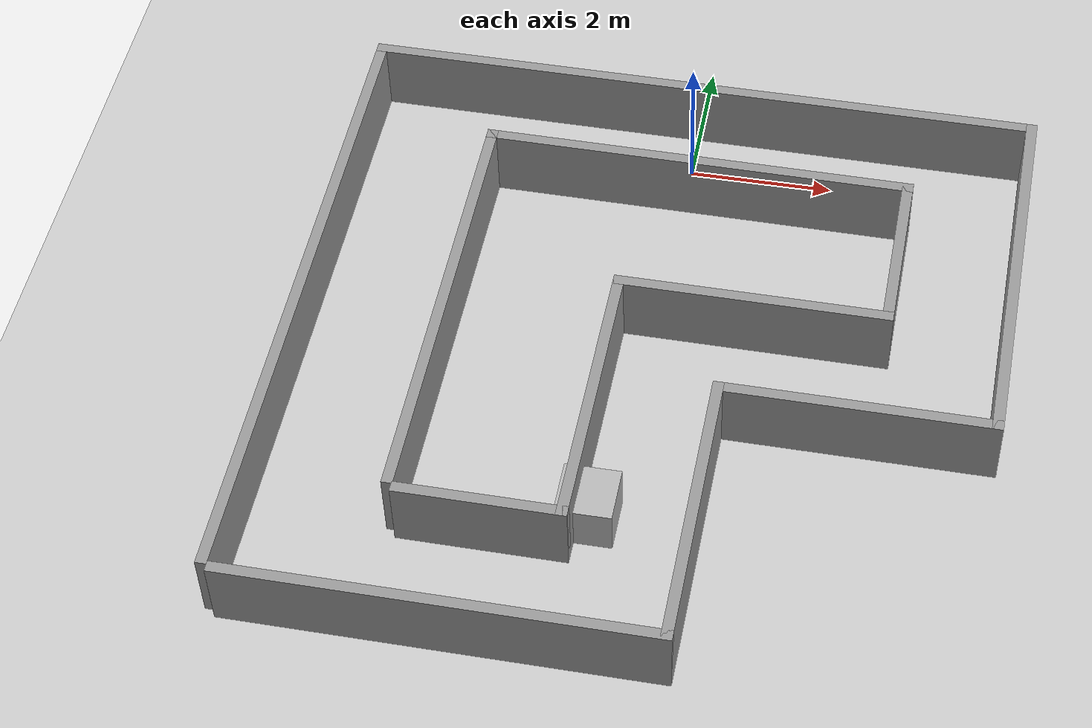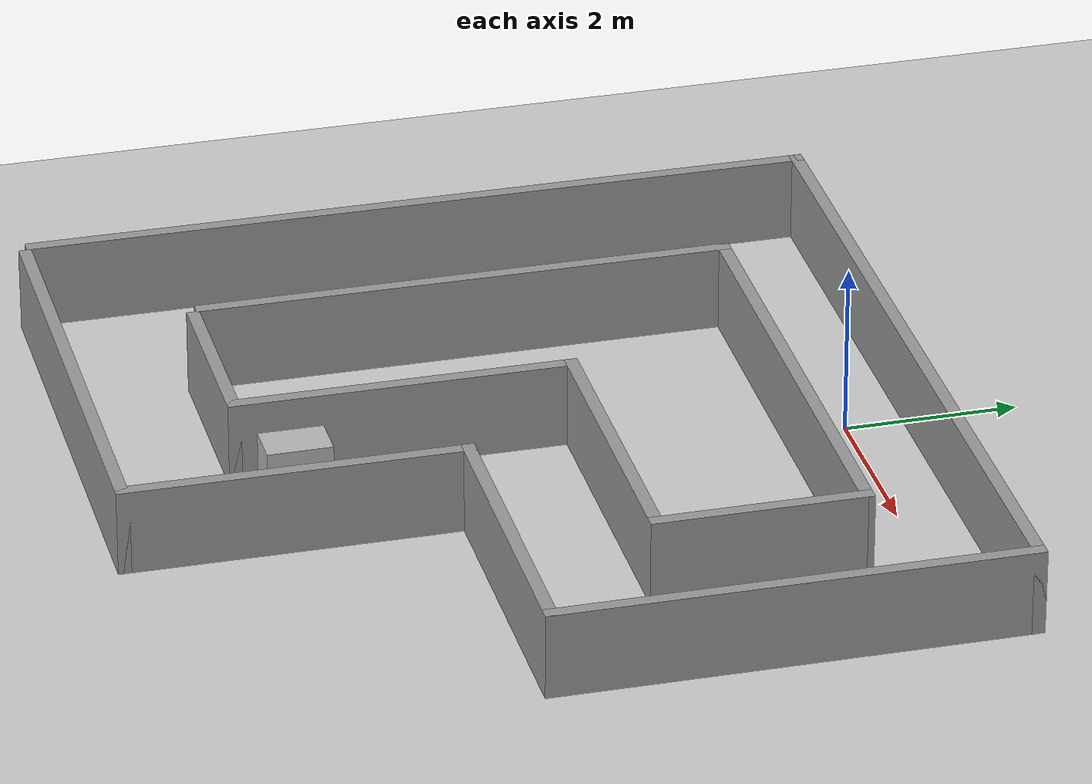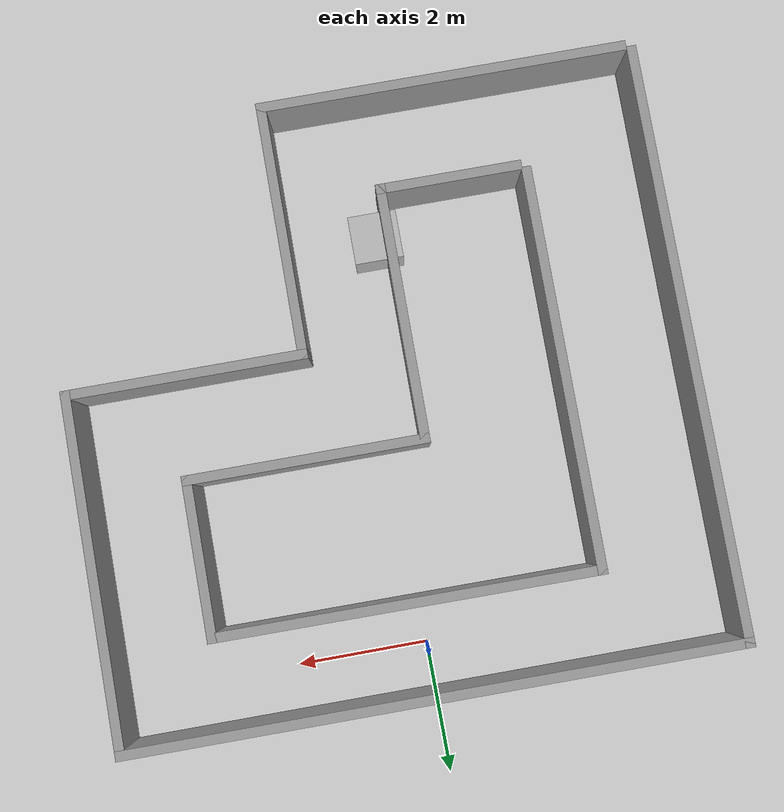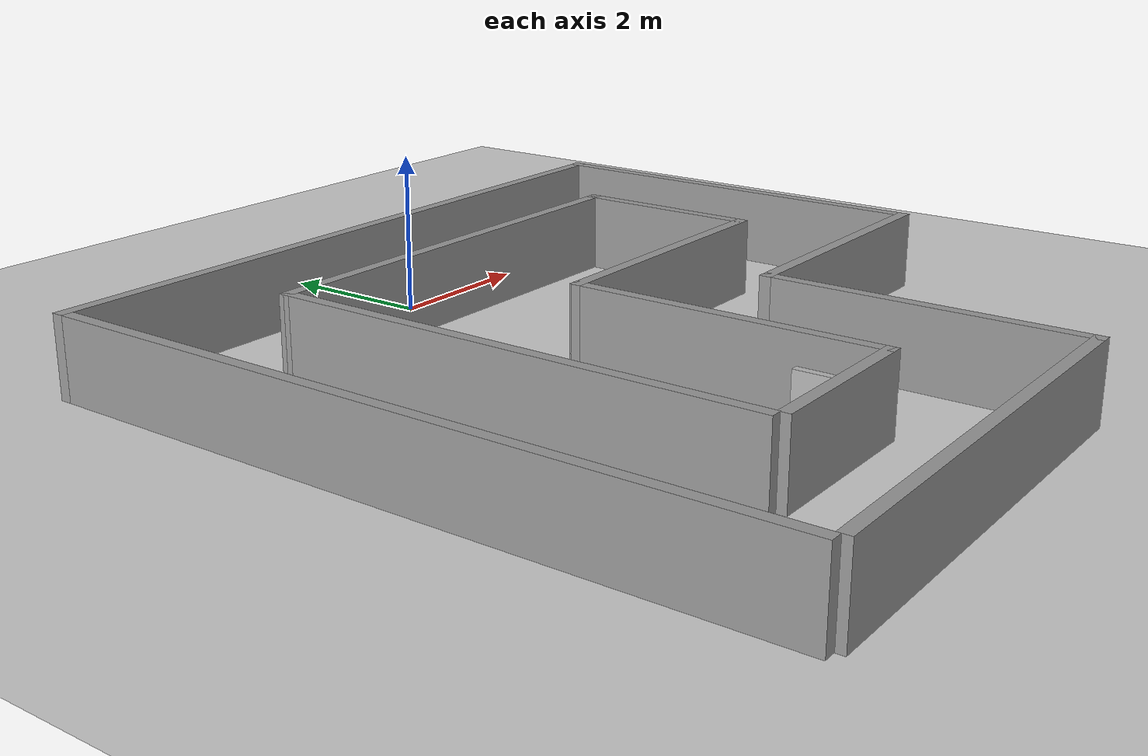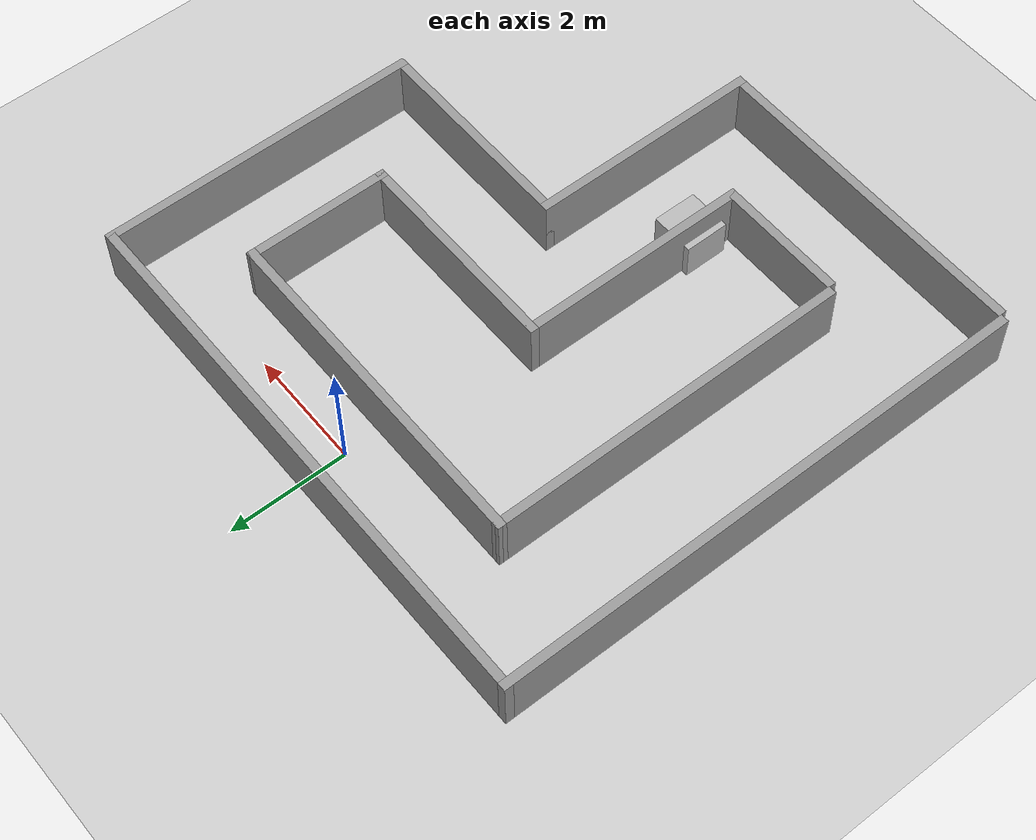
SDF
<sdf version="1.4">
 <world name="default">
  <light name="sun" type="directional">
   <pose>0 0 10 0 -0 0</pose>
   <diffuse>0.8 0.8 0.8 1</diffuse>
   <specular>0.2 0.2 0.2 1</specular>
   <attenuation>
    <range>1000</range>
    <constant>0.9</constant>
    <linear>0.01</linear>
    <quadratic>0.001</quadratic>
   </attenuation>
   <direction>0.5 0.1 -0.9</direction>
  </light>
  <model name="ground_plane">
   <static>1</static>
   <link name="link">
    <collision name="collision">
     <geometry><plane><normal>0 0 1</normal><size>100 100</size></plane></geometry>
     <surface><friction><ode><mu>100</mu><mu2>50</mu2></ode></friction></surface>
    </collision>
    <visual name="visual">
     <cast_shadows>0</cast_shadows>
     <geometry><plane><normal>0 0 1</normal><size>100 100</size></plane></geometry>
     <material>
      <script><uri>file://media/materials/scripts/gazebo.material</uri><name>Gazebo/Grey</name></script>
     </material>
    </visual>
    <velocity_decay><linear>0</linear><angular>0</angular></velocity_decay>
   </link>
  </model>
  <scene><ambient>0.4 0.4 0.4 1</ambient><background>0.7 0.7 0.7 1</background><shadows>0</shadows></scene>
  <physics type="ode">
   <max_step_size>0.01</max_step_size>
   <real_time_factor>1</real_time_factor>
   <real_time_update_rate>0</real_time_update_rate>
   <gravity>0 0 -9.8</gravity>
  </physics>
  <include><uri>model://Circuit_ql_2</uri><pose>0 -3.85 0 0 0 1.567</pose></include>
  <include><uri>model://moving_box</uri><pose>-0.32 -6.25921 0 0 -0 0</pose></include>
 </world>
</sdf>

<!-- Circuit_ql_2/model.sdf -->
<sdf version='1.5'>
  <model name='Circuit_ql_2'>
    <pose frame=''>-0.076 0.178 0 0 -0 0</pose>
    <link name='Wall_0'>
      <collision name='Wall_0_Collision'>
        <geometry>
          <box>
            <size>5.75 0.15 1</size>
          </box>
        </geometry>
        <pose frame=''>0 0 0.5 0 -0 0</pose>
      </collision>
      <visual name='Wall_0_Visual'>
        <pose frame=''>0 0 0.5 0 -0 0</pose>
        <geometry>
          <box>
            <size>5.75 0.15 1</size>
          </box>
        </geometry>
        <material>
          <script>
            <uri>file://media/materials/scripts/gazebo.material</uri>
            <name>Gazebo/Grey</name>
          </script>
          <ambient>1 1 1 1</ambient>
        </material>
      </visual>
      <pose frame=''>-4.6 1.725 0 0 0 -1.5708</pose>
    </link>
    <link name='Wall_1'>
      <collision name='Wall_1_Collision'>
        <geometry>
          <box>
            <size>4 0.15 1</size>
          </box>
        </geometry>
        <pose frame=''>0 0 0.5 0 -0 0</pose>
      </collision>
      <visual name='Wall_1_Visual'>
        <pose frame=''>0 0 0.5 0 -0 0</pose>
        <geometry>
          <box>
            <size>4 0.15 1</size>
          </box>
        </geometry>
        <material>
          <script>
            <uri>file://media/materials/scripts/gazebo.material</uri>
            <name>Gazebo/Grey</name>
          </script>
          <ambient>1 1 1 1</ambient>
        </material>
      </visual>
      <pose frame=''>-2.675 -1.075 0 0 -0 0</pose>
    </link>
    <link name='Wall_11'>
      <collision name='Wall_11_Collision'>
        <geometry>
          <box>
            <size>2.25 0.15 1</size>
          </box>
        </geometry>
        <pose frame=''>0 0 0.5 0 -0 0</pose>
      </collision>
      <visual name='Wall_11_Visual'>
        <pose frame=''>0 0 0.5 0 -0 0</pose>
        <geometry>
          <box>
            <size>2.25 0.15 1</size>
          </box>
        </geometry>
        <material>
          <script>
            <uri>file://media/materials/scripts/gazebo.material</uri>
            <name>Gazebo/Grey</name>
          </script>
          <ambient>1 1 1 1</ambient>
        </material>
      </visual>
      <pose frame=''>-3.036 1.559 0 0 0 -1.5708</pose>
    </link>
    <link name='Wall_12'>
      <collision name='Wall_12_Collision'>
        <geometry>
          <box>
            <size>4 0.15 1</size>
          </box>
        </geometry>
        <pose frame=''>0 0 0.5 0 -0 0</pose>
      </collision>
      <visual name='Wall_12_Visual'>
        <pose frame=''>0 0 0.5 0 -0 0</pose>
        <geometry>
          <box>
            <size>4 0.15 1</size>
          </box>
        </geometry>
        <material>
          <script>
            <uri>file://media/materials/scripts/gazebo.material</uri>
            <name>Gazebo/Grey</name>
          </script>
          <ambient>1 1 1 1</ambient>
        </material>
      </visual>
      <pose frame=''>-1.111 0.509 0 0 -0 0</pose>
    </link>
    <link name='Wall_13'>
      <collision name='Wall_13_Collision'>
        <geometry>
          <box>
            <size>3.75 0.15 1</size>
          </box>
        </geometry>
        <pose frame=''>0 0 0.5 0 -0 0</pose>
      </collision>
      <visual name='Wall_13_Visual'>
        <pose frame=''>0 0 0.5 0 -0 0</pose>
        <geometry>
          <box>
            <size>3.75 0.15 1</size>
          </box>
        </geometry>
        <material>
          <script>
            <uri>file://media/materials/scripts/gazebo.material</uri>
            <name>Gazebo/Grey</name>
          </script>
          <ambient>1 1 1 1</ambient>
        </material>
      </visual>
      <pose frame=''>0.814 -1.291 0 0 0 -1.5708</pose>
    </link>
    <link name='Wall_14'>
      <collision name='Wall_14_Collision'>
        <geometry>
          <box>
            <size>2.5 0.15 1</size>
          </box>
        </geometry>
        <pose frame=''>0 0 0.5 0 -0 0</pose>
      </collision>
      <visual name='Wall_14_Visual'>
        <pose frame=''>0 0 0.5 0 -0 0</pose>
        <geometry>
          <box>
            <size>2.5 0.15 1</size>
          </box>
        </geometry>
        <material>
          <script>
            <uri>file://media/materials/scripts/gazebo.material</uri>
            <name>Gazebo/Grey</name>
          </script>
          <ambient>1 1 1 1</ambient>
        </material>
      </visual>
      <pose frame=''>1.989 -3.091 0 0 -0 0</pose>
    </link>
    <link name='Wall_15'>
      <collision name='Wall_15_Collision'>
        <geometry>
          <box>
            <size>5.98502 0.15 1</size>
          </box>
        </geometry>
        <pose frame=''>0 0 0.5 0 -0 0</pose>
      </collision>
      <visual name='Wall_15_Visual'>
        <pose frame=''>0 0 0.5 0 -0 0</pose>
        <geometry>
          <box>
            <size>5.98502 0.15 1</size>
          </box>
        </geometry>
        <material>
          <script>
            <uri>file://media/materials/scripts/gazebo.material</uri>
            <name>Gazebo/Grey</name>
          </script>
          <ambient>1 1 1 1</ambient>
        </material>
      </visual>
      <pose frame=''>3.1715 -0.1735 0 0 -0 1.56823</pose>
    </link>
    <link name='Wall_16'>
      <collision name='Wall_16_Collision'>
        <geometry>
          <box>
            <size>6.25 0.15 1</size>
          </box>
        </geometry>
        <pose frame=''>0 0 0.5 0 -0 0</pose>
      </collision>
      <visual name='Wall_16_Visual'>
        <pose frame=''>0 0 0.5 0 -0 0</pose>
        <geometry>
          <box>
            <size>6.25 0.15 1</size>
          </box>
        </geometry>
        <material>
          <script>
            <uri>file://media/materials/scripts/gazebo.material</uri>
            <name>Gazebo/Grey</name>
          </script>
          <ambient>1 1 1 1</ambient>
        </material>
      </visual>
      <pose frame=''>0.129 2.744 0 0 -0 3.14159</pose>
    </link>
    <link name='Wall_2'>
      <collision name='Wall_2_Collision'>
        <geometry>
          <box>
            <size>3.75 0.15 1</size>
          </box>
        </geometry>
        <pose frame=''>0 0 0.5 0 -0 0</pose>
      </collision>
      <visual name='Wall_2_Visual'>
        <pose frame=''>0 0 0.5 0 -0 0</pose>
        <geometry>
          <box>
            <size>3.75 0.15 1</size>
          </box>
        </geometry>
        <material>
          <script>
            <uri>file://media/materials/scripts/gazebo.material</uri>
            <name>Gazebo/Grey</name>
          </script>
          <ambient>1 1 1 1</ambient>
        </material>
      </visual>
      <pose frame=''>-0.75 -2.875 0 0 0 -1.5708</pose>
    </link>
    <link name='Wall_3'>
      <collision name='Wall_3_Collision'>
        <geometry>
          <box>
            <size>5.5 0.15 1</size>
          </box>
        </geometry>
        <pose frame=''>0 0 0.5 0 -0 0</pose>
      </collision>
      <visual name='Wall_3_Visual'>
        <pose frame=''>0 0 0.5 0 -0 0</pose>
        <geometry>
          <box>
            <size>5.5 0.15 1</size>
          </box>
        </geometry>
        <material>
          <script>
            <uri>file://media/materials/scripts/gazebo.material</uri>
            <name>Gazebo/Grey</name>
          </script>
          <ambient>1 1 1 1</ambient>
        </material>
      </visual>
      <pose frame=''>1.925 -4.675 0 0 -0 0</pose>
    </link>
    <link name='Wall_7'>
      <collision name='Wall_7_Collision'>
        <geometry>
          <box>
            <size>9.5 0.15 1</size>
          </box>
        </geometry>
        <pose frame=''>0 0 0.5 0 -0 0</pose>
      </collision>
      <visual name='Wall_7_Visual'>
        <pose frame=''>0 0 0.5 0 -0 0</pose>
        <geometry>
          <box>
            <size>9.5 0.15 1</size>
          </box>
        </geometry>
        <material>
          <script>
            <uri>file://media/materials/scripts/gazebo.material</uri>
            <name>Gazebo/Grey</name>
          </script>
          <ambient>1 1 1 1</ambient>
        </material>
      </visual>
      <pose frame=''>4.6 0 0 0 -0 1.5708</pose>
    </link>
    <link name='Wall_9'>
      <collision name='Wall_9_Collision'>
        <geometry>
          <box>
            <size>9.25 0.15 1</size>
          </box>
        </geometry>
        <pose frame=''>0 0 0.5 0 -0 0</pose>
      </collision>
      <visual name='Wall_9_Visual'>
        <pose frame=''>0 0 0.5 0 -0 0</pose>
        <geometry>
          <box>
            <size>9.25 0.15 1</size>
          </box>
        </geometry>
        <material>
          <script>
            <uri>file://media/materials/scripts/gazebo.material</uri>
            <name>Gazebo/Grey</name>
          </script>
          <ambient>1 1 1 1</ambient>
        </material>
      </visual>
      <pose frame=''>0.05 4.675 0 0 -0 3.14159</pose>
    </link>
    <static>1</static>
  </model>
</sdf>

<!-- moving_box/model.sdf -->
<sdf version="1.4">
    <model name="moving_box">
        <link name="link_1">
            <pose>0 0 0.25 0 0 0</pose>
            <gravity>true</gravity>
            <inertial>
                <pose>0 0 0 0 0 0</pose>
                <inertia>
                    <ixx>0.234</ixx>
                    <ixy>0</ixy>
                    <ixz>0</ixz>
                    <iyy>0.234</iyy>
                    <iyz>0</iyz>
                    <izz>0.234</izz>
                </inertia>
                <mass>2</mass>
            </inertial>
            <visual name="visual">
                <geometry>
                    <box>
                        <size>0.75 0.75 0.75</size>
                    </box>
                </geometry>
            </visual>
            <collision name="box_collision">
                <geometry>
                    <box>
                        <size>0.75 0.75 0.75</size>
                    </box>
                </geometry>
                <surface>
                    <friction>
                        <ode>
                            <mu>0.2</mu>
                            <mu2>0.2</mu2>
                        </ode>
                    </friction>
                </surface>
            </collision>
        </link>
        <plugin name="position_2d" filename="libposition_2d_plugin.so">
            <linkName>link_1</linkName>
            <kP_pos>50</kP_pos>
            <kI_pos>0.0</kI_pos>
            <kD_pos>0.0</kD_pos>
            <max_vel>0.5</max_vel>
            <kP_rot>40</kP_rot>
            <kI_rot>0.0</kI_rot>
            <kD_rot>0.0</kD_rot>
            <max_torque>3.0</max_torque>
            <kP_vel>100.0</kP_vel>
            <kI_vel>0.0</kI_vel>
            <kD_vel>0.0</kD_vel>
            <max_force>5.0</max_force>
        </plugin>
    </model>
</sdf>
